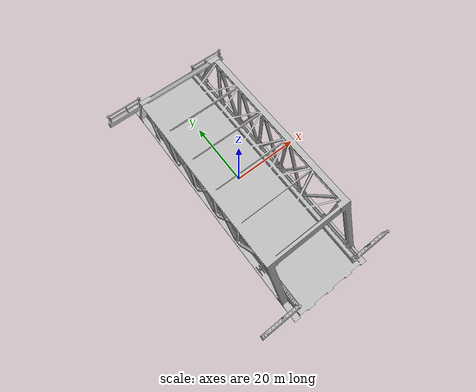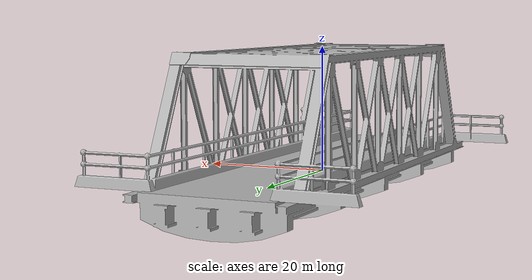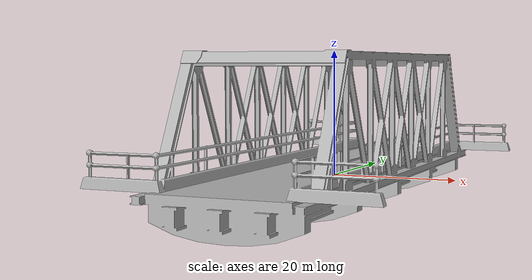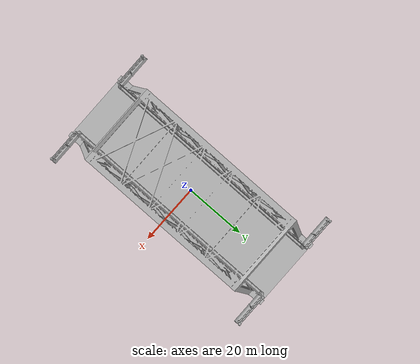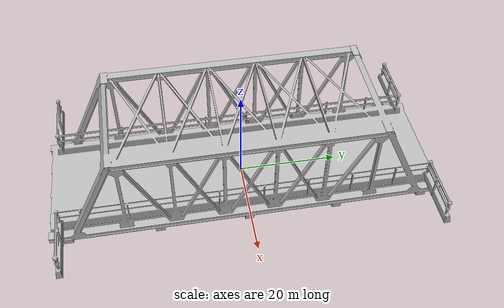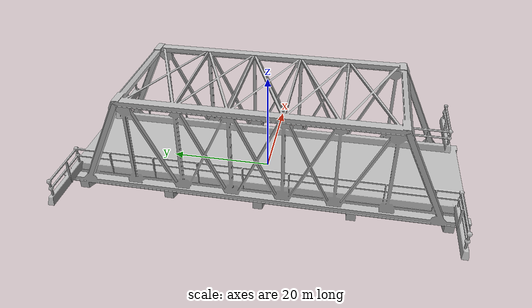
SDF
<?xml version="1.0" ?>
<sdf version="1.6">
  <model name="truss_bridge">
    <static>true</static>
    <link name="link">
      <collision name="collision">
        <geometry>
          <mesh>
            <uri>model://truss_bridge/meshes/truss_bridge.dae</uri>
            <scale>5 5 5</scale>
          </mesh>
        </geometry>
      </collision>
      <visual name="visual">
        <geometry>
          <mesh>
            <uri>model://truss_bridge/meshes/truss_bridge.dae</uri>
            <scale>5 5 5</scale>
          </mesh>
        </geometry>
      </visual>
    </link>
  </model>
</sdf>
